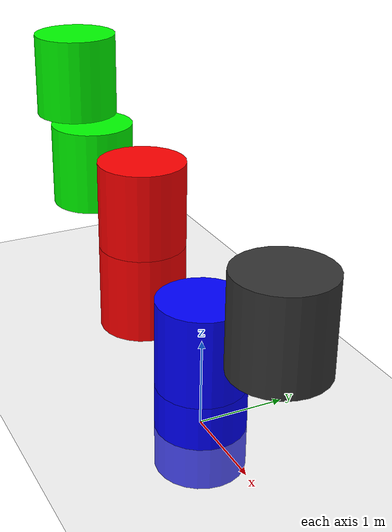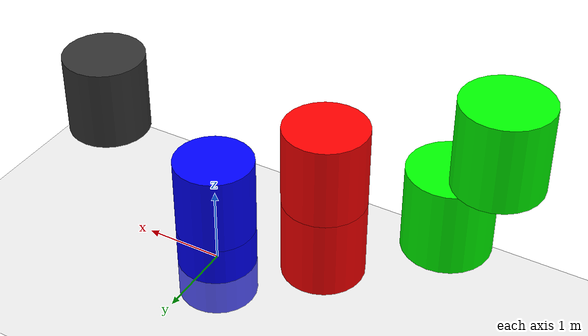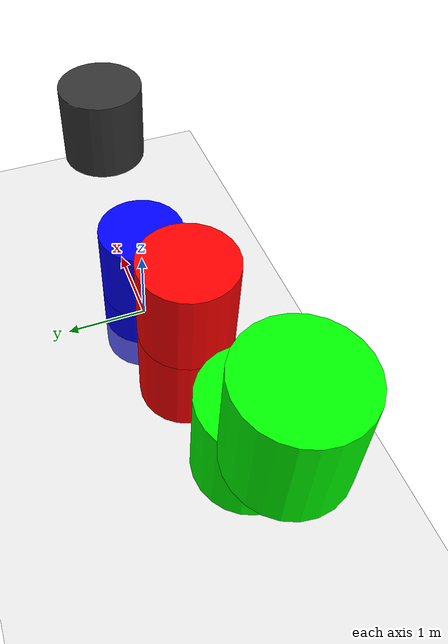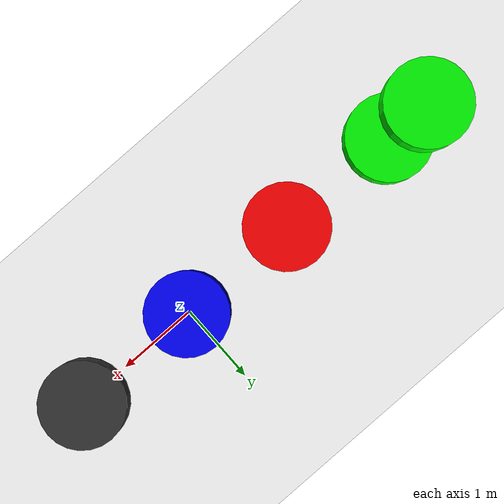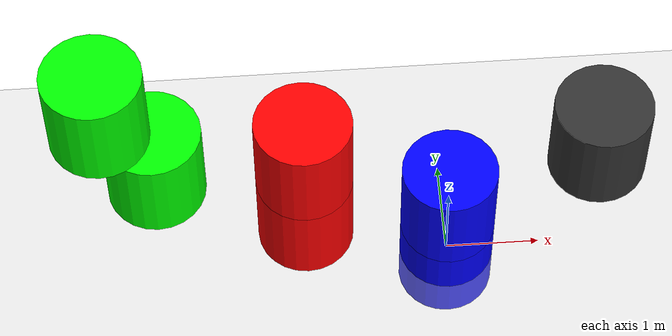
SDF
<?xml version="1.0" ?>
<sdf version="1.7">
  <world name="default">

    <scene>
      <ambient>1.0 1.0 1.0</ambient>
      <background>0.8 0.8 0.8</background>
    </scene>

    <light type="directional" name="sun">
      <cast_shadows>true</cast_shadows>
      <pose>0 0 10 0 0 0</pose>
      <diffuse>0.8 0.8 0.8 1</diffuse>
      <specular>0.8 0.8 0.8 1</specular>
      <attenuation>
        <range>1000</range>
        <constant>0.9</constant>
        <linear>0.01</linear>
        <quadratic>0.001</quadratic>
      </attenuation>
      <direction>-0.5 0.1 -0.9</direction>
    </light>

    <model name="ground_plane">
      <static>true</static>
      <link name="link">
        <collision name="collision">
          <geometry>
            <plane>
              <normal>0 0 1</normal>
              <size>100 100</size>
            </plane>
          </geometry>
        </collision>
        <visual name="visual">
          <geometry>
            <plane>
              <normal>0 0 1</normal>
              <size>100 100</size>
            </plane>
          </geometry>
          <material>
            <ambient>0.8 0.8 0.8 1</ambient>
            <diffuse>0.8 0.8 0.8 1</diffuse>
            <specular>0.8 0.8 0.8 1</specular>
          </material>
        </visual>
      </link>
    </model>

    <model name="link_relative_to">
      <pose>-3.5 0 2 0 0 0</pose>
      <link name="L1">
        <pose>0.5 0 0 0 0 3.14159265358979</pose>
        <visual name="cylinder_visual">
          <geometry>
            <cylinder>
              <radius>0.5</radius>
              <length>1.0</length>
            </cylinder>
          </geometry>
          <material>
            <ambient>0 1 0 1</ambient>
            <diffuse>0 1 0 1</diffuse>
            <specular>0 1 0 1</specular>
          </material>
        </visual>
      </link>
      <link name="L2">
        <pose relative_to="L1">0.5 0 1 0 0 0</pose>
        <visual name="cylinder_visual">
          <geometry>
            <cylinder>
              <radius>0.5</radius>
              <length>1.0</length>
            </cylinder>
          </geometry>
          <material>
            <ambient>0 1 0 1</ambient>
            <diffuse>0 1 0 1</diffuse>
            <specular>0 1 0 1</specular>
          </material>
        </visual>
      </link>
    </model>

    <model name="collision_relative_to">
      <pose>-1.5 0 0 0 0 0</pose>
      <link name="L1">
        <pose>0.0 0 1 0 0 0</pose>
        <visual name="cylinder_visual">
          <geometry>
            <cylinder>
              <radius>0.5</radius>
              <length>1.0</length>
            </cylinder>
          </geometry>
          <material>
            <ambient>1 0 0 1</ambient>
            <diffuse>1 0 0 1</diffuse>
            <specular>1 0 0 1</specular>
          </material>
        </visual>
      </link>
      <link name="L2">
        <pose>0.0 0 2 0 0 0</pose>
        <collision name="c1">
          <pose relative_to="L1"/>
          <geometry><sphere><radius>1</radius></sphere></geometry>
        </collision>
        <visual name="cylinder_visual">
          <geometry>
            <cylinder>
              <radius>0.5</radius>
              <length>1.0</length>
            </cylinder>
          </geometry>
          <material>
            <ambient>1 0 0 1</ambient>
            <diffuse>1 0 0 1</diffuse>
            <specular>1 0 0 1</specular>
          </material>
        </visual>
      </link>
    </model>

    <model name="explicit_frames_with_links">
      <pose>0.0 0 0 0 0 0</pose>
      <frame name="F1">
        <pose>0.0 0 1 0 0 0</pose>
      </frame>
      <link name="L1">
        <pose relative_to="F1"/>
        <visual name="cylinder_visual">
          <geometry>
            <cylinder>
              <radius>0.5</radius>
              <length>1.0</length>
            </cylinder>
          </geometry>
          <material>
            <ambient>0 0 1 1</ambient>
            <diffuse>0 0 1 1</diffuse>
            <specular>0 0 1 1</specular>
          </material>
        </visual>
      </link>
      <frame name="F2" attached_to="L1">
        <pose relative_to="__model__">0.0 0 0 0 0 0</pose>
      </frame>
      <link name="L2">
        <pose relative_to="F2"/>
        <visual name="cylinder_visual">
          <geometry>
            <cylinder>
              <radius>0.5</radius>
              <length>1.0</length>
            </cylinder>
          </geometry>
          <material>
            <ambient>0 0 1 1</ambient>
            <diffuse>0 0 1 1</diffuse>
            <specular>0 0 1 1</specular>
          </material>
        </visual>
      </link>
    </model>

    <model name="explicit_frames_with_collisions">
      <pose>1.5 0 0 0 0 0</pose>
      <frame name="F1">
        <pose relative_to="L1">0 0 1 0 0 0</pose>
      </frame>
      <link name="L1">
        <pose>0 0 2 0 0 0</pose>
        <collision name="c1">
          <pose relative_to="F1"/>
          <geometry><sphere><radius>1</radius></sphere></geometry>
        </collision>
        <visual name="cylinder_visual">
          <geometry>
            <cylinder>
              <radius>0.5</radius>
              <length>1.0</length>
            </cylinder>
          </geometry>
          <material>
            <ambient>0.2 0.2 0.2 1</ambient>
            <diffuse>0.2 0.2 0.2 1</diffuse>
            <specular>0.2 0.2 0.2 1</specular>
          </material>
        </visual>
      </link>
    </model>
  </world>
</sdf>
